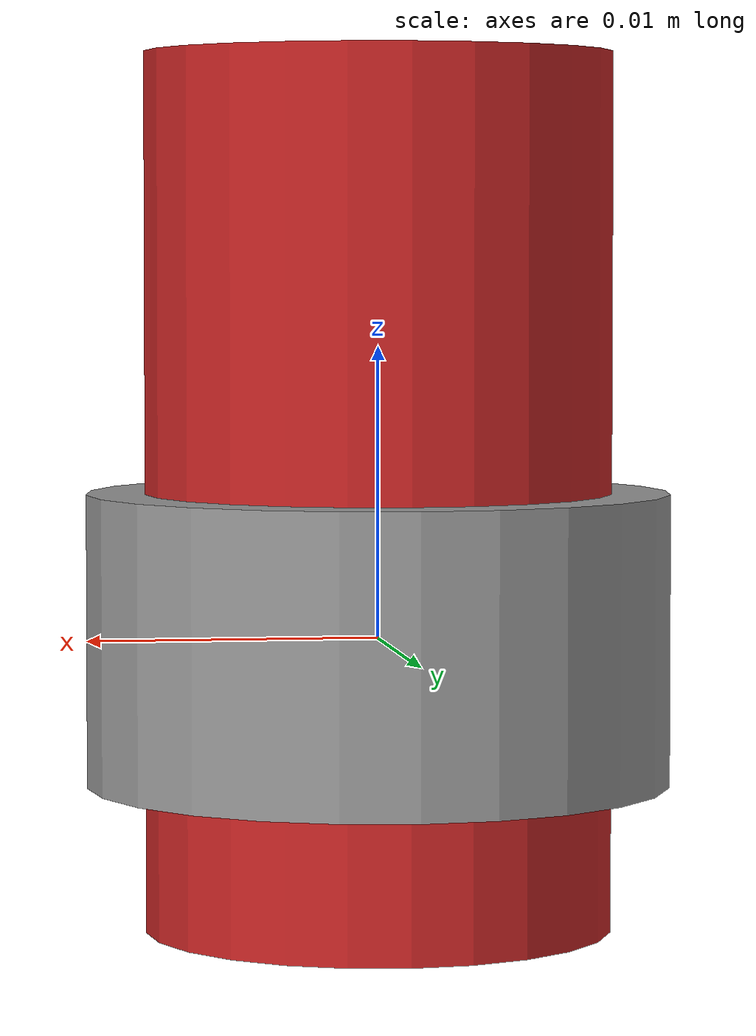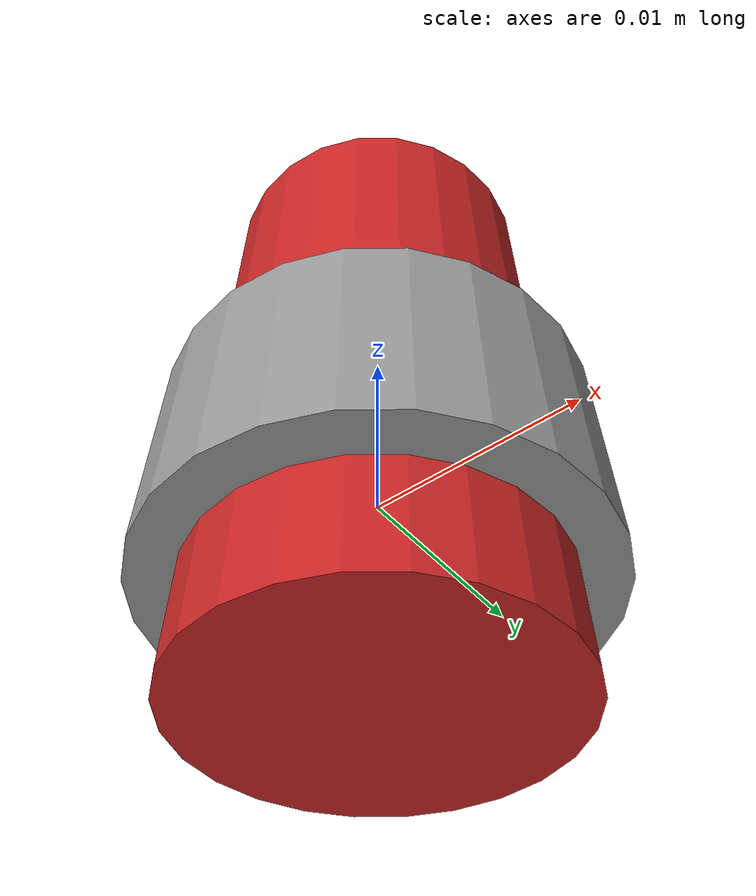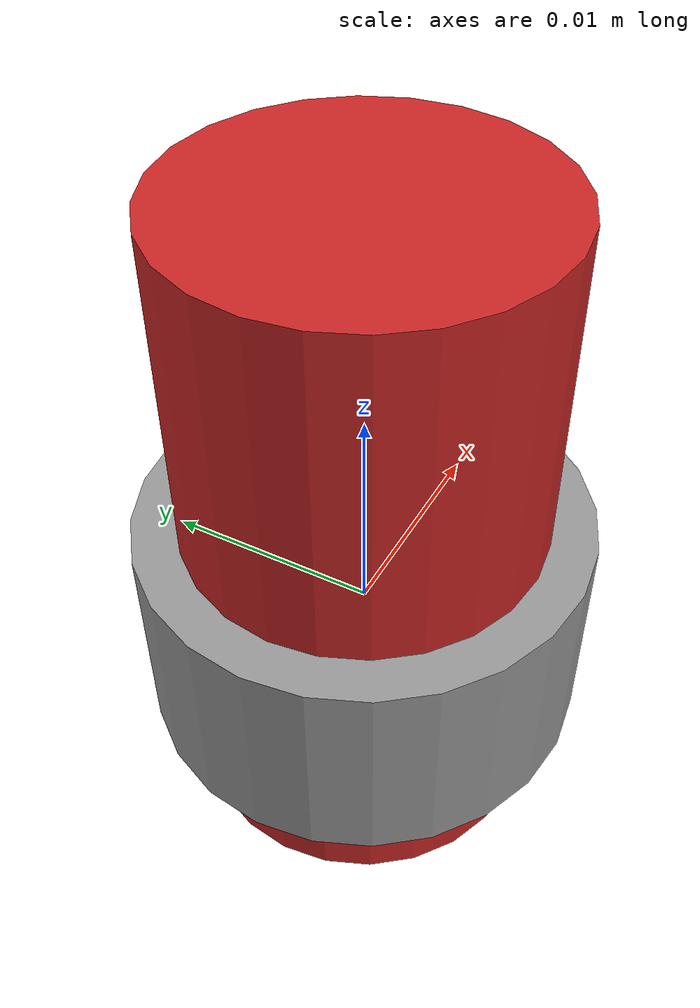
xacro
<?xml version="1.0"?>
<robot xmlns:xacro="http://www.ros.org/wiki/xacro" name="lidar">
    <xacro:property name="base_radius" value="0.01"/>
    <xacro:property name="base_height" value="0.01"/>
    <xacro:property name="lidar_radius" value="0.008"/>
    <xacro:property name="lidar_height" value="0.03"/>

    <gazebo reference="lidar_base">
        <material>Gazebo/Grey</material>
        <mu1>0.2</mu1>
        <mu2>0.2</mu2>
    </gazebo>

    <link name="lidar_base">
        <visual>
            <geometry>
                <cylinder length="${base_height}" radius="${base_radius}"/>
            </geometry>
        </visual>

        <collision>
            <geometry>
                <cylinder length="${base_height}" radius="${base_radius}"/>
            </geometry>
        </collision>

        <inertial>
            <mass value="0.1"/>
            <inertia ixx="${(1/12) * 0.1 * (3 * base_radius * base_radius + base_height * base_height)}" ixy="0" ixz="0" iyy="${(1/12) * 0.1 * (3 * base_radius * base_radius + base_height * base_height)}" iyz="0" izz="${(1/2) * 0.1 * base_radius * base_radius}"/>
        </inertial>
    </link>

    <gazebo reference="lidar_rot">
        <material>Gazebo/RedGlow</material>
        <mu1>0.2</mu1>
        <mu2>0.2</mu2>
    </gazebo>

    <link name="lidar_rot">
        <visual>
            <geometry>
            <cylinder length="${lidar_height}" radius="${lidar_radius}"/>
            </geometry>
        </visual>

        <collision>
            <geometry>
            <cylinder length="${lidar_height}" radius="${lidar_radius}"/>
            </geometry>
        </collision>

        <inertial>
            <mass value="0.1"/>
            <inertia ixx="${(1/12) * 0.1 * (3 * lidar_radius * lidar_radius + lidar_height * lidar_height)}" ixy="0" ixz="0" iyy="${(1/12) * 0.1 * (3 * lidar_radius * lidar_radius + lidar_height * lidar_height)}" iyz="0" izz="${(1/2) * 0.1 * lidar_radius * lidar_radius}"/>
        </inertial>
    </link>

    <joint name="lidarRot" type="continuous">
        <parent link="lidar_base"/>
        <child link="lidar_rot"/>
        <axis xyz="0 0 1"/>
        <origin xyz = "0 0 ${base_height/2}"/>
        <dynamics friction="0.1"/>
    </joint>
</robot>
